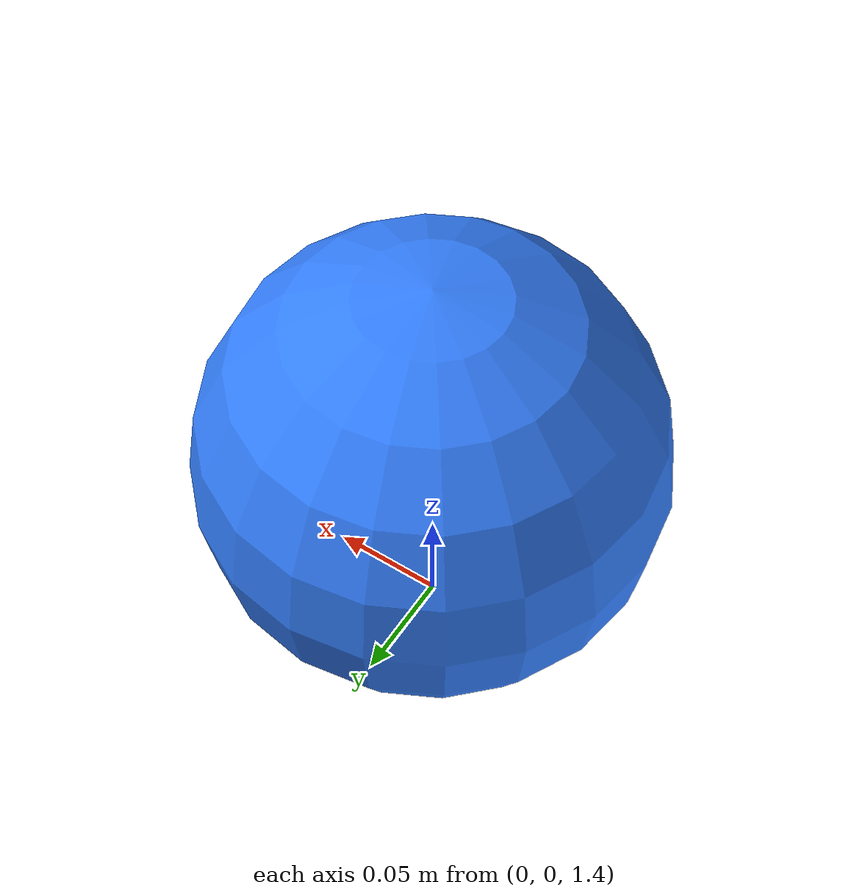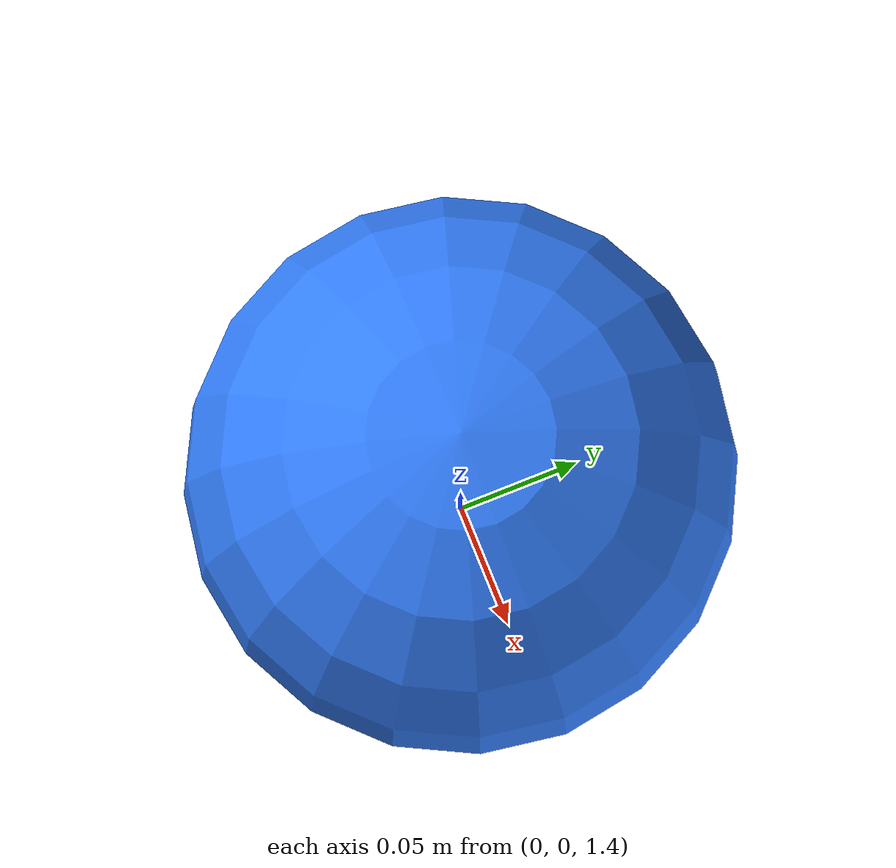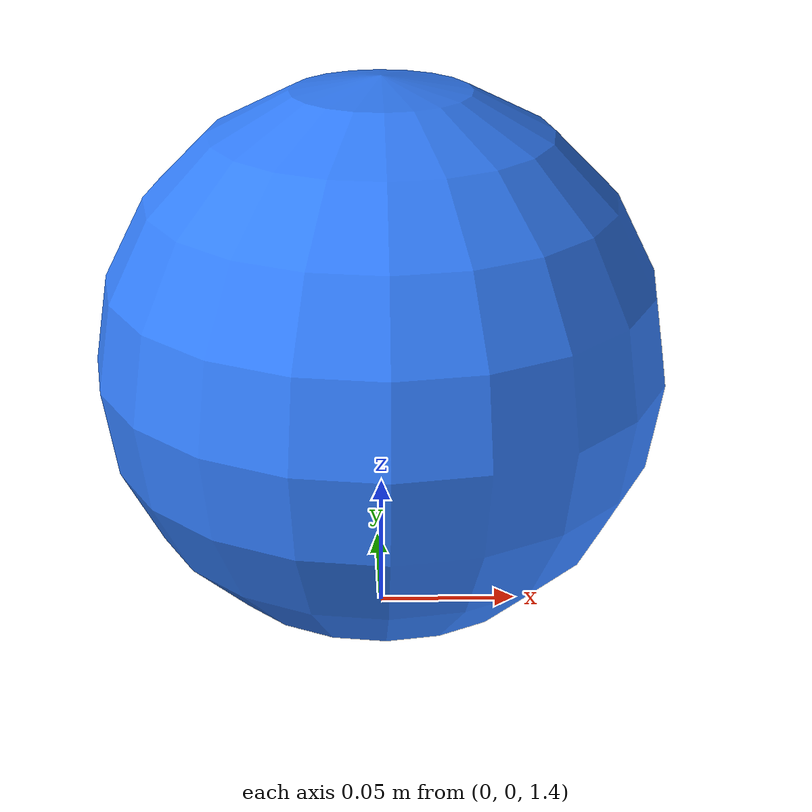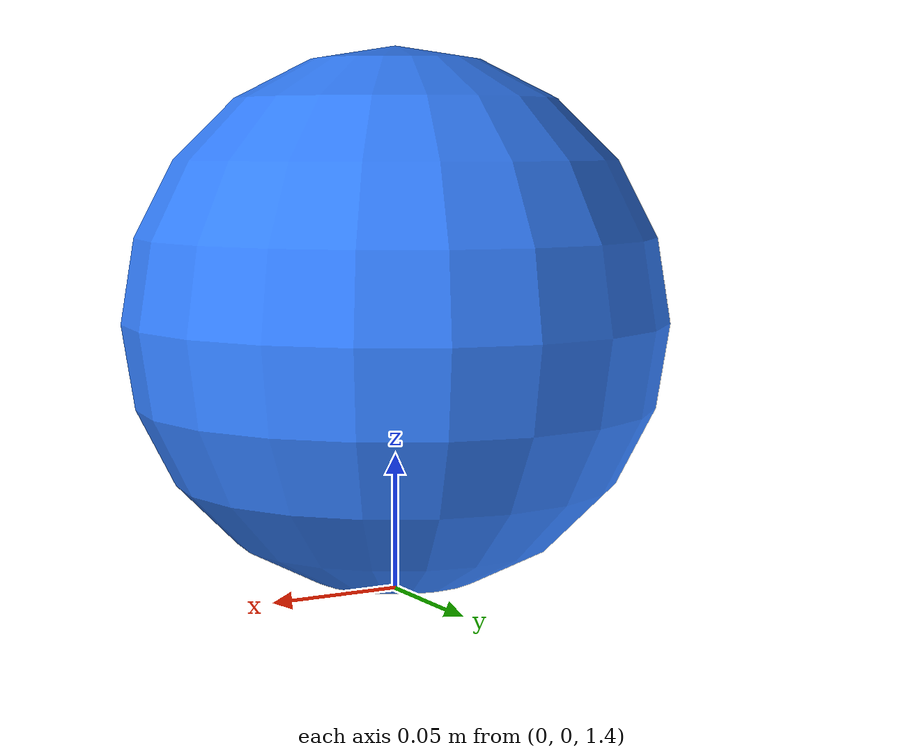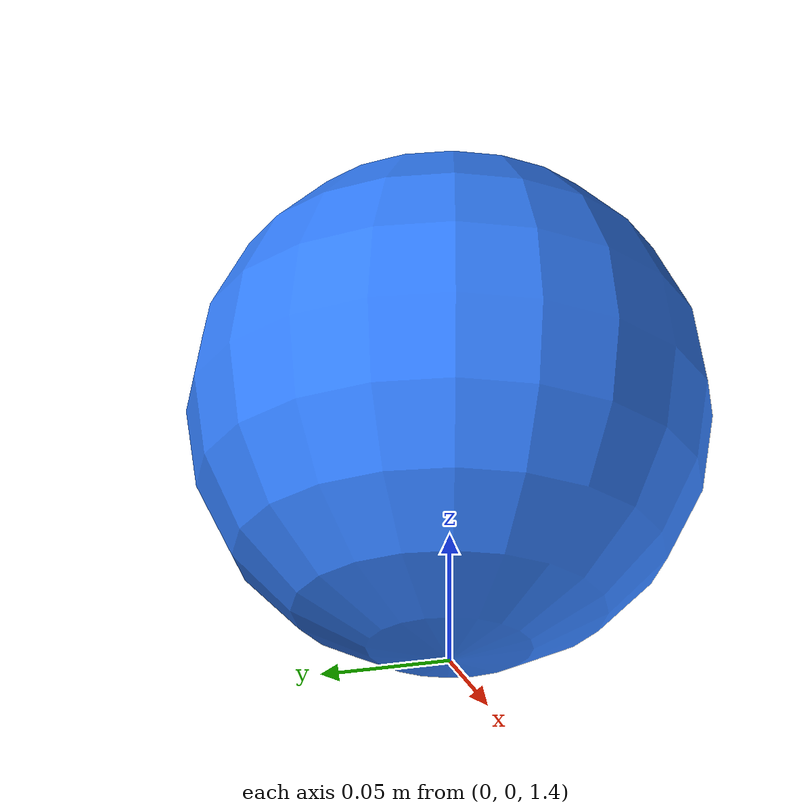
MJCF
<mujoco model="bouncing-ball">
  <option timestep="0.0002" gravity="0 0 -9.81"/>
  <visual>
    <map znear="0.001" zfar="50"/>
  </visual>

  <!-- Global defaults: frictionless contacts -->
  <default>
    <geom friction="0 0 0" condim="3"/>
    <!-- Contact impedance: very stiff, ~zero damping via negative (stiffness, damping) form -->
    <!-- MILDLY BOUNCY -->
    <pair solref="-5000 -0.0" solimp="0.9 0.99 0.0001"/>
    <!-- VERY BOUNCY (uncomment to try) -->
  </default>

  <worldbody>
    <!-- Floor -->
    <geom name="floor" type="plane" size="5 5 0.1" pos="0 0 0" rgba="0.9 0.9 0.9 1"/>

    <!-- Ball (free body) -->
    <body name="ball" pos="0 0 1.5">
      <freejoint/>
      <geom name="ball_geom" type="sphere" size="0.1" density="1000" rgba="0.2 0.5 1 1"/>
    </body>
  </worldbody>

  <!-- Explicit contact pair so our solref/solimp apply -->
  <contact>
    <pair geom1="ball_geom" geom2="floor" solref="-5000 -0.0" solimp="0.9 0.99 0.0001"/>
    <!-- Or use the VERY BOUNCY values here -->
  </contact>
</mujoco>
